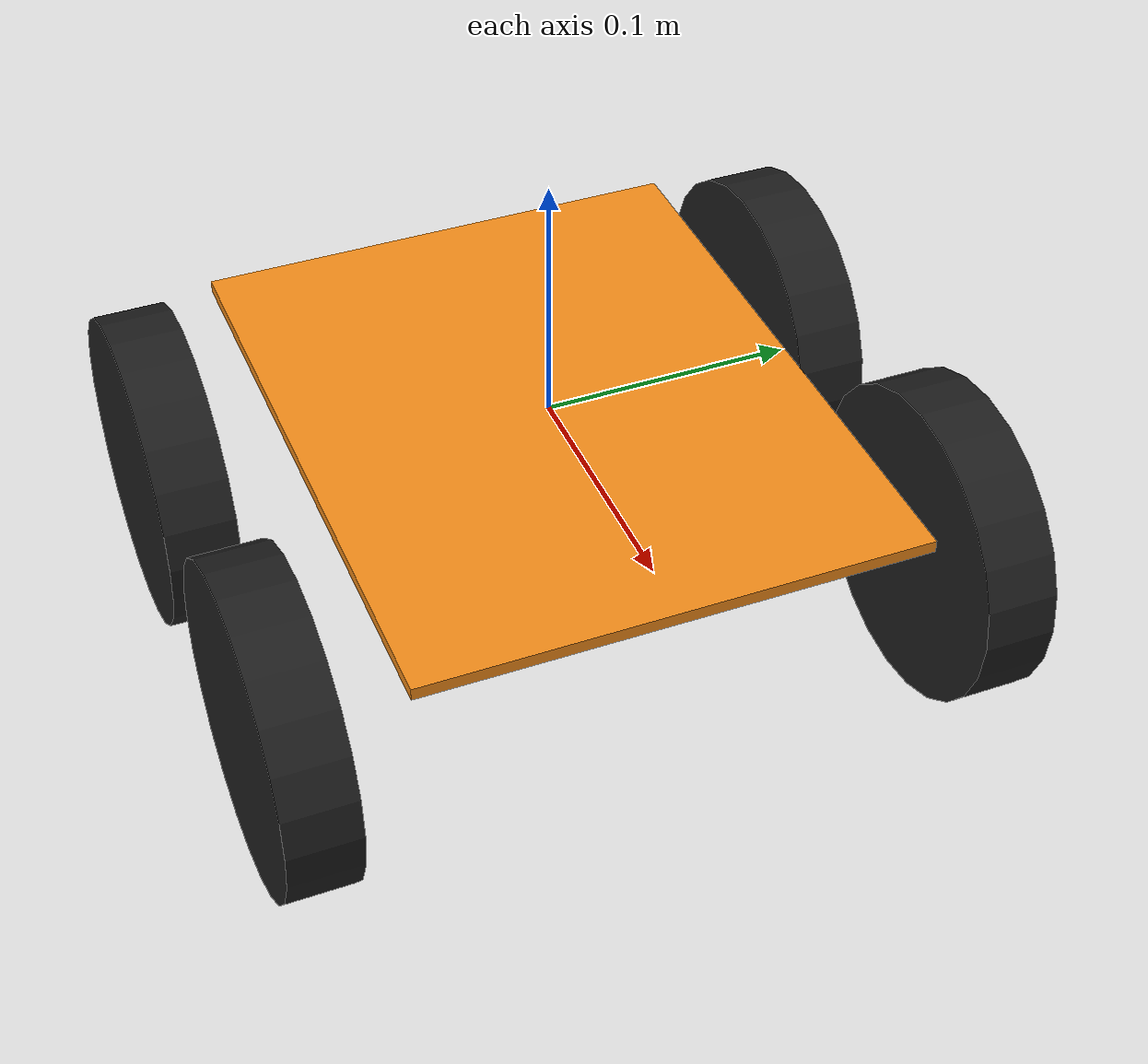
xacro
<?xml version="1.0"?>
<!-- Basic differential drive mobile base -->
<robot xmlns:xacro="http://www.ros.org/wiki/xacro" name="diffdrive_robot">
  <xacro:arg name="prefix" default="" />
  <xacro:arg name="use_mock_hardware" default="false" />
  <xacro:arg name="disable_commands" default="false"/>

  <xacro:include filename="$(find ros2_control_demo_description)/diffbot/urdf/diffbot_description.urdf.xacro" />

  <!-- Import Rviz colors -->
  <xacro:include filename="$(find ros2_control_demo_description)/diffbot/urdf/diffbot.materials.xacro" />

  <!-- Import diffbot ros2_control description -->
  <xacro:include filename="$(find mecanum_robot_hardware)/ros2_control/mecanumbot.ros2_control.xacro" />

  <xacro:diffbot prefix="$(arg prefix)" />

  <xacro:diffbot_ros2_control
    name="DiffBot" prefix="$(arg prefix)" use_mock_hardware="$(arg use_mock_hardware)" disable_commands="$(arg disable_commands)" />

</robot>

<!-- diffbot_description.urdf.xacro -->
<robot xmlns:xacro="http://www.ros.org/wiki/xacro">

  <xacro:macro name="diffbot" params="prefix">

  <!-- Constants for robot dimensions -->
  <xacro:property name="PI" value="3.1415926535897931"/>
  <xacro:property name="base_mass" value="0.3" /> <!-- arbitrary value for base mass -->
  <xacro:property name="base_width" value="0.2513" />
  <xacro:property name="base_length" value="0.2" />
  <xacro:property name="base_height" value="0.005" />
  <xacro:property name="wheel_mass" value="0.3" /> <!-- arbitrary value for wheel mass -->
  <xacro:property name="wheel_len" value="0.029" />
  <xacro:property name="wheel_radius" value="0.065" />
  <xacro:property name="caster_wheel_mass" value="0.1" /> <!-- arbitrary value for caster wheel mass -->
  <xacro:property name="caster_wheel_radius" value="0.015" />

  <!-- Base Link -->
  <link name="${prefix}base_link">
    <collision>
      <origin xyz="0 0 0" rpy="0 0 0"/>
      <geometry>
        <box size="${base_width} ${base_length} ${base_height}"/>
      </geometry>
    </collision>

    <visual>
      <origin xyz="0 0 0" rpy="0 0 0"/>
      <geometry>
        <box size="${base_width} ${base_length} ${base_height}"/>
      </geometry>
      <material name="orange"/>
    </visual>
  </link>

  <!-- rear left wheel Link -->
  <link name="${prefix}rear_left_wheel">
    <collision>
      <origin xyz="0 0 0" rpy="0 0 0"/>
      <geometry>
        <cylinder length="${wheel_len}" radius="${wheel_radius}"/>
      </geometry>
    </collision>

    <visual>
      <origin xyz="0 0 0" rpy="0 0 0"/>
      <geometry>
        <cylinder length="${wheel_len}" radius="${wheel_radius}"/>
      </geometry>
      <material name="black"/>
    </visual>
  </link>

  <!-- rear right wheel Link -->
  <link name="${prefix}rear_right_wheel">
    <collision>
      <origin xyz="0 0 0" rpy="0 0 0"/>
      <geometry>
        <cylinder length="${wheel_len}" radius="${wheel_radius}"/>
      </geometry>
    </collision>

    <visual>
      <origin xyz="0 0 0" rpy="0 0 0"/>
      <geometry>
        <cylinder length="${wheel_len}" radius="${wheel_radius}"/>
      </geometry>
      <material name="black"/>
    </visual>
  </link>

  <!-- front left wheel Link -->
  <link name="${prefix}front_left_wheel">
    <collision>
      <origin xyz="0 0 0" rpy="0 0 0"/>
      <geometry>
        <cylinder length="${wheel_len}" radius="${wheel_radius}"/>
      </geometry>
    </collision>

    <visual>
      <origin xyz="0 0 0" rpy="0 0 0"/>
      <geometry>
        <cylinder length="${wheel_len}" radius="${wheel_radius}"/>
      </geometry>
      <material name="black"/>
    </visual>
  </link>

  <!-- front right wheel Link -->
  <link name="${prefix}front_right_wheel">
    <collision>
      <origin xyz="0 0 0" rpy="0 0 0"/>
      <geometry>
        <cylinder length="${wheel_len}" radius="${wheel_radius}"/>
      </geometry>
    </collision>

    <visual>
      <origin xyz="0 0 0" rpy="0 0 0"/>
      <geometry>
        <cylinder length="${wheel_len}" radius="${wheel_radius}"/>
      </geometry>
      <material name="black"/>
    </visual>
  </link>

  <!-- rear left wheel joint-->
  <joint name="${prefix}rear_left_wheel_joint" type="continuous">
    <parent link="${prefix}base_link"/>
    <child link="${prefix}rear_left_wheel"/>
    <origin xyz="-0.08355 0.136701 -0.051657" rpy="${-PI/2} 0 0"/>
    <axis xyz="0 0 1"/>
    <limit effort="100" velocity="1.0"/>
  </joint>

  <!-- rear right wheel joint-->
  <joint name="${prefix}rear_right_wheel_joint" type="continuous">
    <parent link="${prefix}base_link"/>
    <child link="${prefix}rear_right_wheel"/>
    <origin xyz="-0.08355 -0.136701 -0.051657" rpy="${PI/2} 0 0"/>
    <axis xyz="0 0 1"/>
    <limit effort="100" velocity="1.0"/>
  </joint>

  <!-- front left wheel joint-->
  <joint name="${prefix}front_left_wheel_joint" type="continuous">
    <parent link="${prefix}base_link"/>
    <child link="${prefix}front_left_wheel"/>
    <origin xyz="0.07145 0.136701 -0.051657" rpy="${-PI/2} 0 0"/>
    <axis xyz="0 0 1"/>
    <limit effort="100" velocity="1.0"/>
  </joint>

  <!-- front left wheel joint-->
  <joint name="${prefix}front_right_wheel_joint" type="continuous">
    <parent link="${prefix}base_link"/>
    <child link="${prefix}front_right_wheel"/>
    <origin xyz="0.07145 -0.136701 -0.051657" rpy="${PI/2} 0 0"/>
    <axis xyz="0 0 1"/>
    <limit effort="100" velocity="1.0"/>
  </joint>
  </xacro:macro>

</robot>
